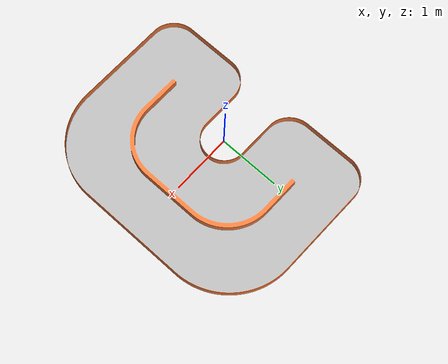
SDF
<?xml version="1.0"?>
<sdf version="1.6">
  <world name="u_map">

    <!-- Optional tweaks to increase performance -->
    <scene>
        <shadows>false</shadows>
    </scene>
    <physics type="ode">
        <real_time_update_rate>1000</real_time_update_rate>
        <max_step_size>0.001</max_step_size>
    </physics>

    <include>
      <uri>model://sun</uri>
    </include>

    <include>
      <uri>model://U_map</uri>
    </include>

  </world>
</sdf>

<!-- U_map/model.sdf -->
<sdf version="1.6">
  <model name="U_map">
    <static>true</static>

    <link name="u_map">
	  <pose> 0 0 0.01  0 0 0</pose>
      <visual name="visual">
        <geometry>
	      <mesh>
		    <uri>model://U_map/materials/meshes/RoBo_PlayGround.dae</uri>
		  </mesh>
        </geometry>
      </visual>
    </link>

	<link name="walls">
	  <pose> 0 0 0.01  0 0 -1.5708</pose>
      <collision name="collision">
        <geometry>
	      <mesh>
		    <uri>model://U_map/materials/meshes/RoBo_PlayGround.stl</uri>
		  </mesh>
        </geometry>
      </collision>
	</link>

  </model>
</sdf>
